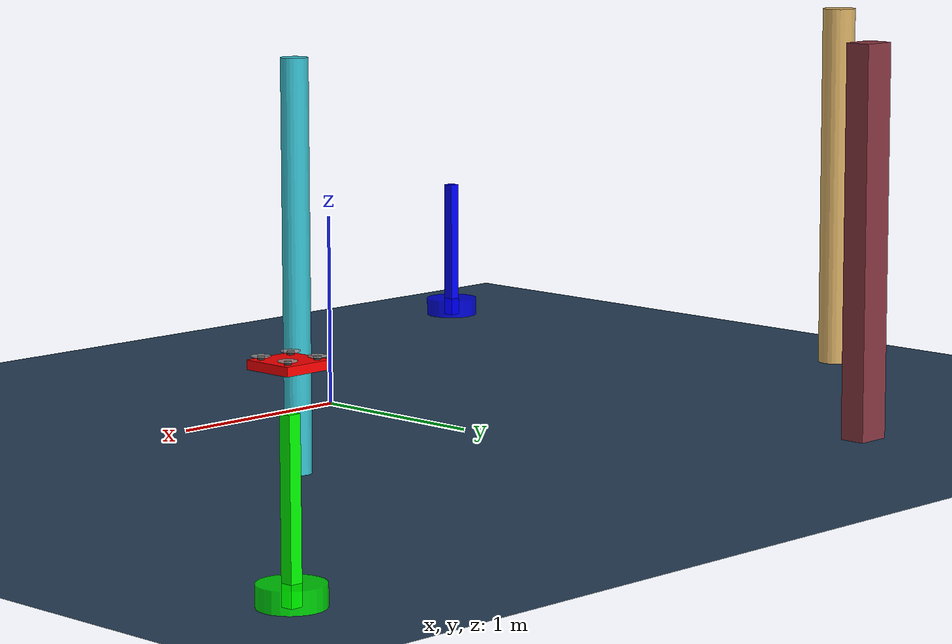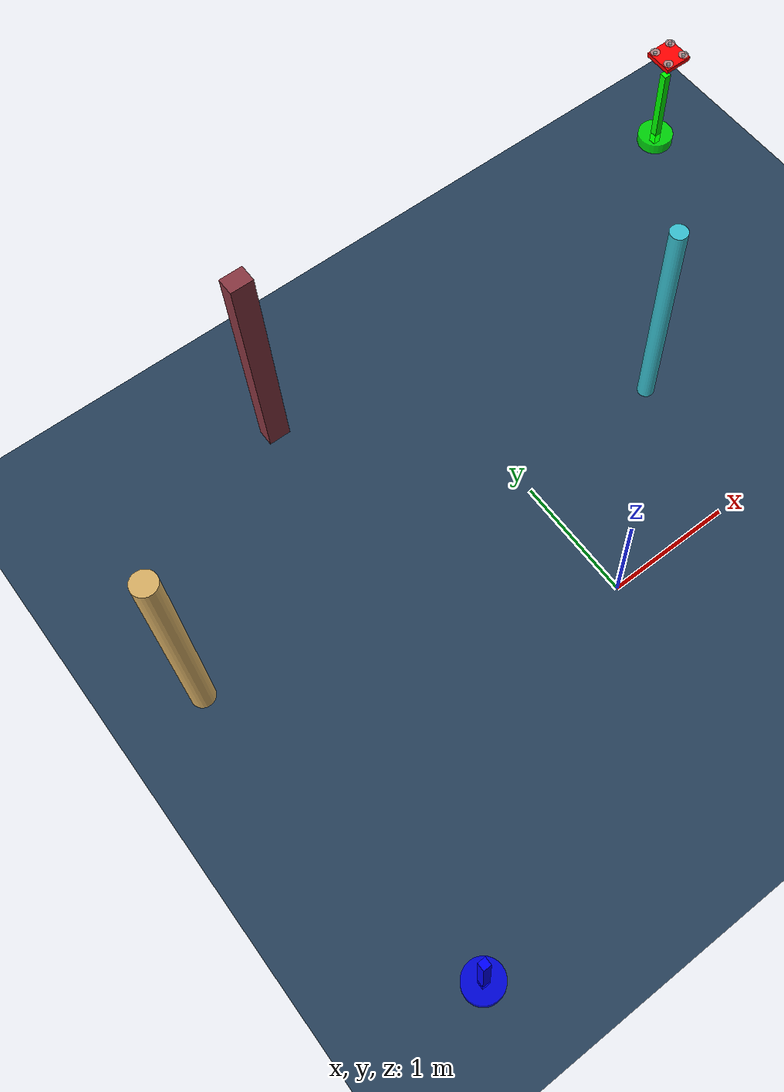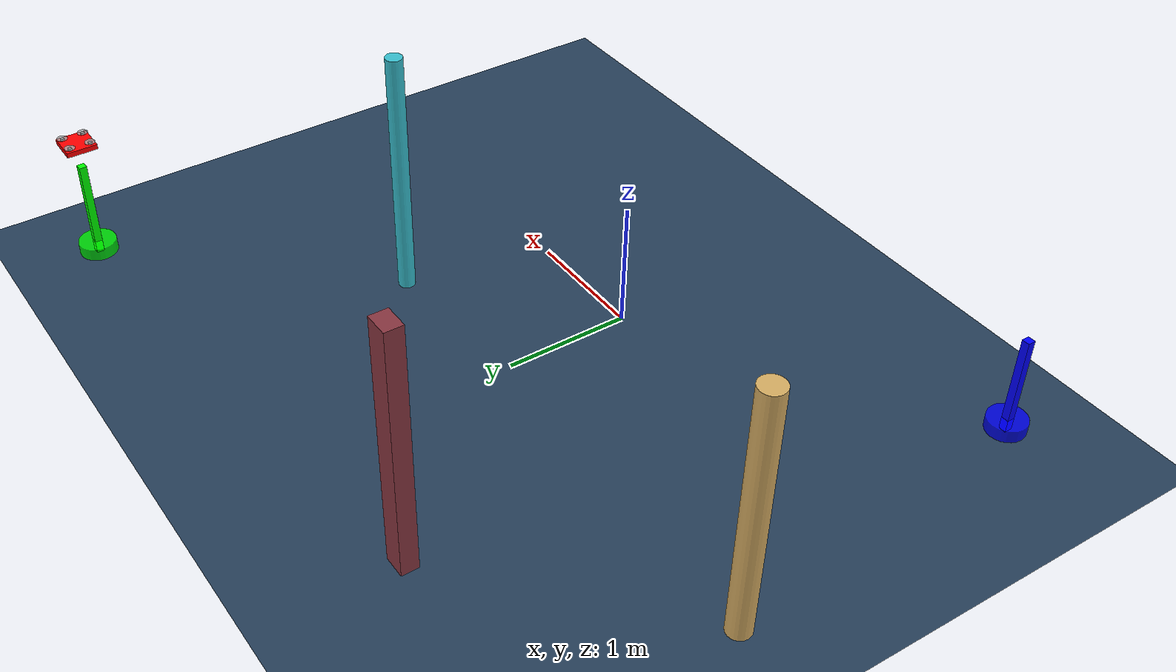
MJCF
<mujoco model="complex_uav_env">
  <compiler angle="degree" coordinate="local" inertiafromgeom="true"/>
  <option integrator="RK4" timestep="0.01"/>

  <visual>
    <headlight diffuse="0.6 0.6 0.6" ambient="0.3 0.3 0.3"/>
    <rgba haze="0.15 0.25 0.35 1"/>
    <global offwidth="2560" offheight="1440"/>
  </visual>

  <asset>
    <texture type="skybox" builtin="gradient" rgb1="0.3 0.5 0.7" rgb2="0 0 0" width="512" height="3072"/>
    <texture name="grid" type="2d" builtin="checker" rgb1="0.1 0.2 0.3" rgb2="0.2 0.3 0.4" width="512" height="512"/>
    <material name="grid" texture="grid" texrepeat="1 1" reflectance="0.2"/>
  </asset>

  <worldbody>
    <!-- Ground plane -->
    <geom name="ground" type="plane" size="4.0 4.0 0.1" material="grid"/>
    <light name="light1" pos="0 0 4" dir="0 0 -1" diffuse="1 1 1"/>

    <!-- Start position marker (green) -->
    <geom name="start_marker" type="cylinder" size="0.15 0.05" pos="3.0 3.0 0.05" rgba="0 1 0 0.8"/>
    <geom name="start_pole" type="box" size="0.03 0.03 0.4" pos="3.0 3.0 0.4" rgba="0 1 0 1"/>

    <!-- Goal position marker (blue) -->
    <geom name="goal_marker" type="cylinder" size="0.15 0.05" pos="-2.441885674031824 -1.5367182009240885 0.05" rgba="0 0 1 0.8"/>
    <geom name="goal_pole" type="box" size="0.03 0.03 0.4" pos="-2.441885674031824 -1.5367182009240885 0.4" rgba="0 0 1 1"/>

    <!-- UAV starting position -->
    <body name="chassis" pos="3.0 3.0 1.0">
      <joint type="free" name="root"/>
      <geom type="box" size="0.12 0.12 0.02" rgba="1.0 0.0 0.0 1.0" mass="0.8"/>

      <!-- Propeller arms and motors -->
      <geom type="box" size="0.08 0.01 0.005" pos="0 0 0.01" rgba="0.3 0.3 0.3 1"/>
      <geom type="box" size="0.01 0.08 0.005" pos="0 0 0.01" rgba="0.3 0.3 0.3 1"/>

      <!-- Motor visual geometry -->
      <geom type="cylinder" size="0.015 0.02" pos="0.08 0.08 0.015" rgba="0.2 0.2 0.2 1"/>
      <geom type="cylinder" size="0.015 0.02" pos="-0.08 0.08 0.015" rgba="0.2 0.2 0.2 1"/>
      <geom type="cylinder" size="0.015 0.02" pos="0.08 -0.08 0.015" rgba="0.2 0.2 0.2 1"/>
      <geom type="cylinder" size="0.015 0.02" pos="-0.08 -0.08 0.015" rgba="0.2 0.2 0.2 1"/>

      <!-- Propellers -->
      <geom type="cylinder" size="0.04 0.002" pos="0.08 0.08 0.035" rgba="0.7 0.7 0.7 0.8"/>
      <geom type="cylinder" size="0.04 0.002" pos="-0.08 0.08 0.035" rgba="0.7 0.7 0.7 0.8"/>
      <geom type="cylinder" size="0.04 0.002" pos="0.08 -0.08 0.035" rgba="0.7 0.7 0.7 0.8"/>
      <geom type="cylinder" size="0.04 0.002" pos="-0.08 -0.08 0.035" rgba="0.7 0.7 0.7 0.8"/>

      <!-- Sites for motor force application -->
      <site name="motor1" pos="0.08 0.08 0" size="0.01"/>
      <site name="motor2" pos="-0.08 0.08 0" size="0.01"/>
      <site name="motor3" pos="0.08 -0.08 0" size="0.01"/>
      <site name="motor4" pos="-0.08 -0.08 0" size="0.01"/>
    </body>
    <geom name="test_obs_0" type="cylinder" size="0.09094194280123341 1.0" pos="-2.8162288997738463 1.1604560285803767 1.0" rgba="0.840965635666878 0.6809057887145952 0.38897683352167456 1.0"/>
    <geom name="test_obs_1" type="cylinder" size="0.06639700463427045 1.0" pos="1.273505651210013 1.1457474137104926 1.0" rgba="0.2166332374262323 0.7525464634440182 0.813290134682638 1.0"/>
    <geom name="test_obs_2" type="box" size="0.09024045157974918 0.06815494409872162 1.0" pos="-1.2331817393333218 2.6086301140122505 1.0" rgba="0.5327388451162014 0.2118311150410576 0.2529277491262448 1.0"/>
  </worldbody>

  <actuator>
    <motor name="m1" gear="0 0 1 0 0 0" site="motor1"/>
    <motor name="m2" gear="0 0 1 0 0 0" site="motor2"/>
    <motor name="m3" gear="0 0 1 0 0 0" site="motor3"/>
    <motor name="m4" gear="0 0 1 0 0 0" site="motor4"/>
  </actuator>
</mujoco>
